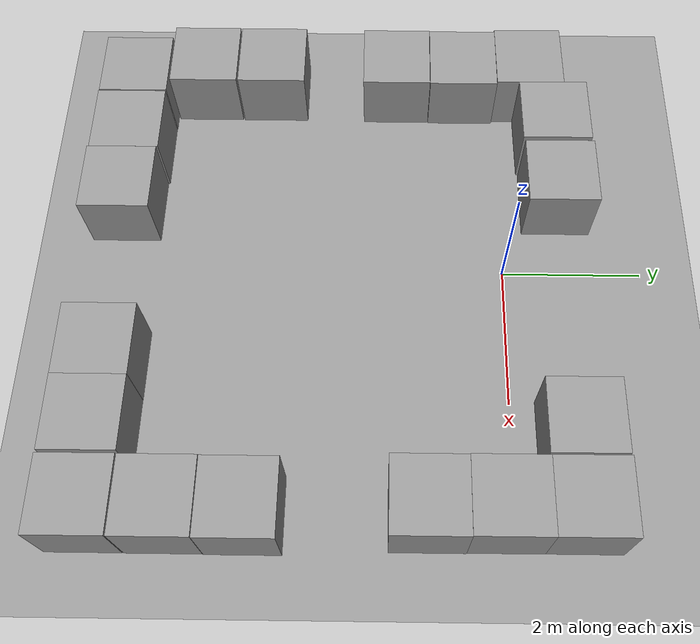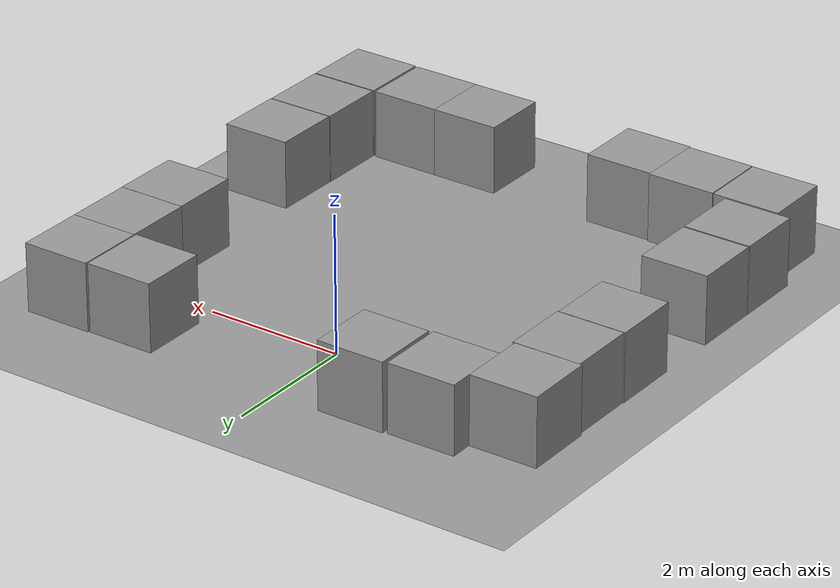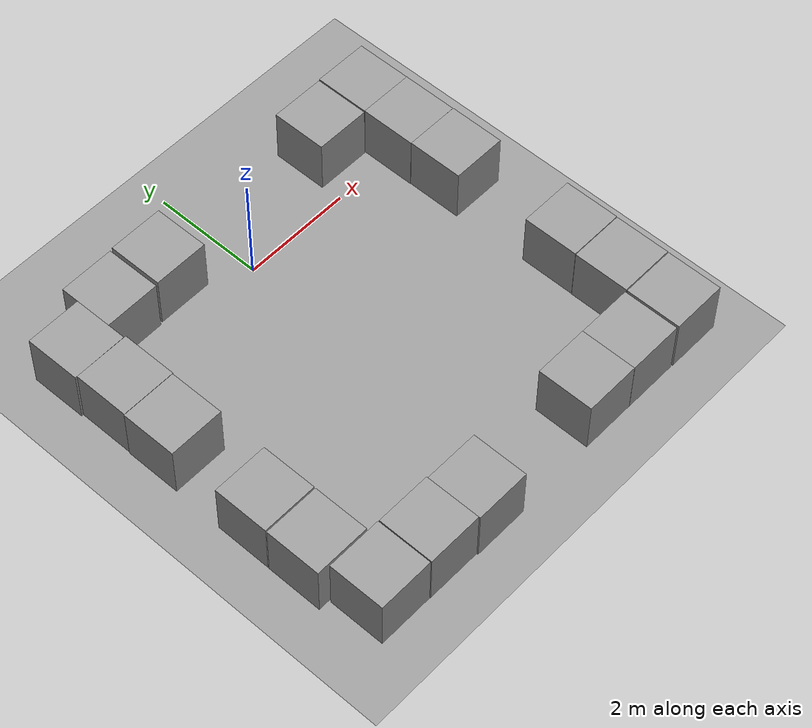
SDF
<sdf version="1.4">
 <world name="default">
  <light name="sun" type="directional">
   <pose>0 0 10 0 -0 0</pose>
   <diffuse>0.8 0.8 0.8 1</diffuse>
   <specular>0.2 0.2 0.2 1</specular>
   <attenuation>
    <range>1000</range>
    <constant>0.9</constant>
    <linear>0.01</linear>
    <quadratic>0.001</quadratic>
   </attenuation>
   <direction>0.5 0.1 -0.9</direction>
  </light>
  <scene><ambient>0.4 0.4 0.4 1</ambient><background>0.7 0.7 0.7 1</background><shadows>1</shadows></scene>
  <physics type="ode">
   <max_step_size>0.01</max_step_size>
   <real_time_factor>1</real_time_factor>
   <real_time_update_rate>100</real_time_update_rate>
   <gravity>0 0 -9.8</gravity>
  </physics>
  <model name="ground_plane_0">
   <static>1</static>
   <link name="link">
    <collision name="collision">
     <geometry><plane><normal>0 0 1</normal><size>100 100</size></plane></geometry>
     <surface><friction><ode><mu>100</mu><mu2>50</mu2></ode></friction></surface>
    </collision>
    <visual name="visual">
     <cast_shadows>0</cast_shadows>
     <geometry><plane><normal>0 0 1</normal><size>100 100</size></plane></geometry>
     <material>
      <script><uri>file://media/materials/scripts/gazebo.material</uri><name>Gazebo/Grey</name></script>
     </material>
    </visual>
    <velocity_decay><linear>0</linear><angular>0</angular></velocity_decay>
   </link>
   <pose>0.497681 0 0 0 -0 0</pose>
  </model>
  <spherical_coordinates>
   <surface_model>EARTH_WGS84</surface_model>
   <latitude_deg>0</latitude_deg>
   <longitude_deg>0</longitude_deg>
   <elevation>0</elevation>
   <heading_deg>0</heading_deg>
  </spherical_coordinates>
  <model name="unit_box_1">
   <pose>-1.9983 -5.50693 0.5 0 -0 -8.1e-05</pose>
   <link name="link">
    <inertial>
     <mass>1</mass>
     <inertia><ixx>1</ixx><ixy>0</ixy><ixz>0</ixz><iyy>1</iyy><iyz>0</iyz><izz>1</izz></inertia>
    </inertial>
    <collision name="collision"><geometry><box><size>1 1 1</size></box></geometry></collision>
    <visual name="visual">
     <geometry><box><size>1 1 1</size></box></geometry>
     <material>
      <script><uri>file://media/materials/scripts/gazebo.material</uri><name>Gazebo/Grey</name></script>
     </material>
    </visual>
    <velocity_decay><linear>0</linear><angular>0</angular></velocity_decay>
   </link>
   <static>0</static>
  </model>
  <model name="unit_box_2">
   <pose>-3.01301 -5.50106 0.5 0 -0 0.001673</pose>
   <link name="link">
    <inertial>
     <mass>1</mass>
     <inertia><ixx>1</ixx><ixy>0</ixy><ixz>0</ixz><iyy>1</iyy><iyz>0</iyz><izz>1</izz></inertia>
    </inertial>
    <collision name="collision"><geometry><box><size>1 1 1</size></box></geometry></collision>
    <visual name="visual">
     <geometry><box><size>1 1 1</size></box></geometry>
     <material>
      <script><uri>file://media/materials/scripts/gazebo.material</uri><name>Gazebo/Grey</name></script>
     </material>
    </visual>
    <velocity_decay><linear>0</linear><angular>0</angular></velocity_decay>
   </link>
   <static>0</static>
  </model>
  <model name="unit_box_3">
   <pose>-3.21516 -4.47183 0.5 0 -0 0</pose>
   <link name="link">
    <inertial>
     <mass>1</mass>
     <inertia><ixx>1</ixx><ixy>0</ixy><ixz>0</ixz><iyy>1</iyy><iyz>0</iyz><izz>1</izz></inertia>
    </inertial>
    <collision name="collision"><geometry><box><size>1 1 1</size></box></geometry></collision>
    <visual name="visual">
     <geometry><box><size>1 1 1</size></box></geometry>
     <material>
      <script><uri>file://media/materials/scripts/gazebo.material</uri><name>Gazebo/Grey</name></script>
     </material>
    </visual>
    <velocity_decay><linear>0</linear><angular>0</angular></velocity_decay>
   </link>
   <static>0</static>
  </model>
  <model name="unit_box_4">
   <pose>-3.21348 -3.44836 0.5 0 -0 7.1e-05</pose>
   <link name="link">
    <inertial>
     <mass>1</mass>
     <inertia><ixx>1</ixx><ixy>0</ixy><ixz>0</ixz><iyy>1</iyy><iyz>0</iyz><izz>1</izz></inertia>
    </inertial>
    <collision name="collision"><geometry><box><size>1 1 1</size></box></geometry></collision>
    <visual name="visual">
     <geometry><box><size>1 1 1</size></box></geometry>
     <material>
      <script><uri>file://media/materials/scripts/gazebo.material</uri><name>Gazebo/Grey</name></script>
     </material>
    </visual>
    <velocity_decay><linear>0</linear><angular>0</angular></velocity_decay>
   </link>
   <static>0</static>
  </model>
  <model name="unit_box_6">
   <pose>-3.19774 -1.55597 0.5 0 -0 0.003499</pose>
   <link name="link">
    <inertial>
     <mass>1</mass>
     <inertia><ixx>1</ixx><ixy>0</ixy><ixz>0</ixz><iyy>1</iyy><iyz>0</iyz><izz>1</izz></inertia>
    </inertial>
    <collision name="collision"><geometry><box><size>1 1 1</size></box></geometry></collision>
    <visual name="visual">
     <geometry><box><size>1 1 1</size></box></geometry>
     <material>
      <script><uri>file://media/materials/scripts/gazebo.material</uri><name>Gazebo/Grey</name></script>
     </material>
    </visual>
    <velocity_decay><linear>0</linear><angular>0</angular></velocity_decay>
   </link>
   <static>0</static>
  </model>
  <model name="unit_box_7">
   <pose>-3.18841 -0.550018 0.5 0 -0 0.003941</pose>
   <link name="link">
    <inertial>
     <mass>1</mass>
     <inertia><ixx>1</ixx><ixy>0</ixy><ixz>0</ixz><iyy>1</iyy><iyz>0</iyz><izz>1</izz></inertia>
    </inertial>
    <collision name="collision"><geometry><box><size>1 1 1</size></box></geometry></collision>
    <visual name="visual">
     <geometry><box><size>1 1 1</size></box></geometry>
     <material>
      <script><uri>file://media/materials/scripts/gazebo.material</uri><name>Gazebo/Grey</name></script>
     </material>
    </visual>
    <velocity_decay><linear>0</linear><angular>0</angular></velocity_decay>
   </link>
   <static>0</static>
  </model>
  <model name="unit_box_8">
   <pose>-3.22931 0.451945 0.5 0 -0 0.008458</pose>
   <link name="link">
    <inertial>
     <mass>1</mass>
     <inertia><ixx>1</ixx><ixy>0</ixy><ixz>0</ixz><iyy>1</iyy><iyz>0</iyz><izz>1</izz></inertia>
    </inertial>
    <collision name="collision"><geometry><box><size>1 1 1</size></box></geometry></collision>
    <visual name="visual">
     <geometry><box><size>1 1 1</size></box></geometry>
     <material>
      <script><uri>file://media/materials/scripts/gazebo.material</uri><name>Gazebo/Grey</name></script>
     </material>
    </visual>
    <velocity_decay><linear>0</linear><angular>0</angular></velocity_decay>
   </link>
   <static>0</static>
  </model>
  <model name="unit_box_9">
   <pose>-2.23206 0.789754 0.5 0 -0 0.008876</pose>
   <link name="link">
    <inertial>
     <mass>1</mass>
     <inertia><ixx>1</ixx><ixy>0</ixy><ixz>0</ixz><iyy>1</iyy><iyz>0</iyz><izz>1</izz></inertia>
    </inertial>
    <collision name="collision"><geometry><box><size>1 1 1</size></box></geometry></collision>
    <visual name="visual">
     <geometry><box><size>1 1 1</size></box></geometry>
     <material>
      <script><uri>file://media/materials/scripts/gazebo.material</uri><name>Gazebo/Grey</name></script>
     </material>
    </visual>
    <velocity_decay><linear>0</linear><angular>0</angular></velocity_decay>
   </link>
   <static>0</static>
  </model>
  <model name="unit_box_10">
   <pose>-0.998289 -5.53141 0.5 0 -0 -0.000105</pose>
   <link name="link">
    <inertial>
     <mass>1</mass>
     <inertia><ixx>1</ixx><ixy>0</ixy><ixz>0</ixz><iyy>1</iyy><iyz>0</iyz><izz>1</izz></inertia>
    </inertial>
    <collision name="collision"><geometry><box><size>1 1 1</size></box></geometry></collision>
    <visual name="visual">
     <geometry><box><size>1 1 1</size></box></geometry>
     <material>
      <script><uri>file://media/materials/scripts/gazebo.material</uri><name>Gazebo/Grey</name></script>
     </material>
    </visual>
    <velocity_decay><linear>0</linear><angular>0</angular></velocity_decay>
   </link>
   <static>0</static>
  </model>
  <model name="unit_box_11">
   <pose>1.49995 -5.49013 0.5 0 -0 0</pose>
   <link name="link">
    <inertial>
     <mass>1</mass>
     <inertia><ixx>1</ixx><ixy>0</ixy><ixz>0</ixz><iyy>1</iyy><iyz>0</iyz><izz>1</izz></inertia>
    </inertial>
    <collision name="collision"><geometry><box><size>1 1 1</size></box></geometry></collision>
    <visual name="visual">
     <geometry><box><size>1 1 1</size></box></geometry>
     <material>
      <script><uri>file://media/materials/scripts/gazebo.material</uri><name>Gazebo/Grey</name></script>
     </material>
    </visual>
    <velocity_decay><linear>0</linear><angular>0</angular></velocity_decay>
   </link>
   <static>0</static>
  </model>
  <model name="unit_box_12">
   <pose>2.49995 -5.49243 0.5 0 -0 0</pose>
   <link name="link">
    <inertial>
     <mass>1</mass>
     <inertia><ixx>1</ixx><ixy>0</ixy><ixz>0</ixz><iyy>1</iyy><iyz>0</iyz><izz>1</izz></inertia>
    </inertial>
    <collision name="collision"><geometry><box><size>1 1 1</size></box></geometry></collision>
    <visual name="visual">
     <geometry><box><size>1 1 1</size></box></geometry>
     <material>
      <script><uri>file://media/materials/scripts/gazebo.material</uri><name>Gazebo/Grey</name></script>
     </material>
    </visual>
    <velocity_decay><linear>0</linear><angular>0</angular></velocity_decay>
   </link>
   <static>0</static>
  </model>
  <model name="unit_box_13">
   <pose>3.53634 -5.50055 0.5 0 -0 0</pose>
   <link name="link">
    <inertial>
     <mass>1</mass>
     <inertia><ixx>1</ixx><ixy>0</ixy><ixz>0</ixz><iyy>1</iyy><iyz>0</iyz><izz>1</izz></inertia>
    </inertial>
    <collision name="collision"><geometry><box><size>1 1 1</size></box></geometry></collision>
    <visual name="visual">
     <geometry><box><size>1 1 1</size></box></geometry>
     <material>
      <script><uri>file://media/materials/scripts/gazebo.material</uri><name>Gazebo/Grey</name></script>
     </material>
    </visual>
    <velocity_decay><linear>0</linear><angular>0</angular></velocity_decay>
   </link>
   <static>0</static>
  </model>
  <model name="unit_box_14">
   <pose>3.53877 -4.4835 0.5 0 -0 0</pose>
   <link name="link">
    <inertial>
     <mass>1</mass>
     <inertia><ixx>1</ixx><ixy>0</ixy><ixz>0</ixz><iyy>1</iyy><iyz>0</iyz><izz>1</izz></inertia>
    </inertial>
    <collision name="collision"><geometry><box><size>1 1 1</size></box></geometry></collision>
    <visual name="visual">
     <geometry><box><size>1 1 1</size></box></geometry>
     <material>
      <script><uri>file://media/materials/scripts/gazebo.material</uri><name>Gazebo/Grey</name></script>
     </material>
    </visual>
    <velocity_decay><linear>0</linear><angular>0</angular></velocity_decay>
   </link>
   <static>0</static>
  </model>
  <model name="unit_box_15">
   <pose>3.54468 -3.4736 0.5 0 -0 0</pose>
   <link name="link">
    <inertial>
     <mass>1</mass>
     <inertia><ixx>1</ixx><ixy>0</ixy><ixz>0</ixz><iyy>1</iyy><iyz>0</iyz><izz>1</izz></inertia>
    </inertial>
    <collision name="collision"><geometry><box><size>1 1 1</size></box></geometry></collision>
    <visual name="visual">
     <geometry><box><size>1 1 1</size></box></geometry>
     <material>
      <script><uri>file://media/materials/scripts/gazebo.material</uri><name>Gazebo/Grey</name></script>
     </material>
    </visual>
    <velocity_decay><linear>0</linear><angular>0</angular></velocity_decay>
   </link>
   <static>0</static>
  </model>
  <model name="unit_box_16">
   <pose>3.49201 -1.13333 0.5 0 -0 -0.000981</pose>
   <link name="link">
    <inertial>
     <mass>1</mass>
     <inertia><ixx>1</ixx><ixy>0</ixy><ixz>0</ixz><iyy>1</iyy><iyz>0</iyz><izz>1</izz></inertia>
    </inertial>
    <collision name="collision"><geometry><box><size>1 1 1</size></box></geometry></collision>
    <visual name="visual">
     <geometry><box><size>1 1 1</size></box></geometry>
     <material>
      <script><uri>file://media/materials/scripts/gazebo.material</uri><name>Gazebo/Grey</name></script>
     </material>
    </visual>
    <velocity_decay><linear>0</linear><angular>0</angular></velocity_decay>
   </link>
   <static>0</static>
  </model>
  <model name="unit_box_17">
   <pose>3.48632 -0.132936 0.5 0 -0 -0.000195</pose>
   <link name="link">
    <inertial>
     <mass>1</mass>
     <inertia><ixx>1</ixx><ixy>0</ixy><ixz>0</ixz><iyy>1</iyy><iyz>0</iyz><izz>1</izz></inertia>
    </inertial>
    <collision name="collision"><geometry><box><size>1 1 1</size></box></geometry></collision>
    <visual name="visual">
     <geometry><box><size>1 1 1</size></box></geometry>
     <material>
      <script><uri>file://media/materials/scripts/gazebo.material</uri><name>Gazebo/Grey</name></script>
     </material>
    </visual>
    <velocity_decay><linear>0</linear><angular>0</angular></velocity_decay>
   </link>
   <static>0</static>
  </model>
  <model name="unit_box_18">
   <pose>3.4847 0.867083 0.5 0 -0 -0.000227</pose>
   <link name="link">
    <inertial>
     <mass>1</mass>
     <inertia><ixx>1</ixx><ixy>0</ixy><ixz>0</ixz><iyy>1</iyy><iyz>0</iyz><izz>1</izz></inertia>
    </inertial>
    <collision name="collision"><geometry><box><size>1 1 1</size></box></geometry></collision>
    <visual name="visual">
     <geometry><box><size>1 1 1</size></box></geometry>
     <material>
      <script><uri>file://media/materials/scripts/gazebo.material</uri><name>Gazebo/Grey</name></script>
     </material>
    </visual>
    <velocity_decay><linear>0</linear><angular>0</angular></velocity_decay>
   </link>
   <static>0</static>
  </model>
  <model name="unit_box_19">
   <pose>2.46369 0.851003 0.5 0 -0 -0.00026</pose>
   <link name="link">
    <inertial>
     <mass>1</mass>
     <inertia><ixx>1</ixx><ixy>0</ixy><ixz>0</ixz><iyy>1</iyy><iyz>0</iyz><izz>1</izz></inertia>
    </inertial>
    <collision name="collision"><geometry><box><size>1 1 1</size></box></geometry></collision>
    <visual name="visual">
     <geometry><box><size>1 1 1</size></box></geometry>
     <material>
      <script><uri>file://media/materials/scripts/gazebo.material</uri><name>Gazebo/Grey</name></script>
     </material>
    </visual>
    <velocity_decay><linear>0</linear><angular>0</angular></velocity_decay>
   </link>
   <static>0</static>
  </model>
  <model name="unit_box_21">
   <pose>-1.17603 0.818711 0.5 0 -0 0.004149</pose>
   <link name="link">
    <inertial>
     <mass>1</mass>
     <inertia><ixx>1</ixx><ixy>0</ixy><ixz>0</ixz><iyy>1</iyy><iyz>0</iyz><izz>1</izz></inertia>
    </inertial>
    <collision name="collision"><geometry><box><size>1 1 1</size></box></geometry></collision>
    <visual name="visual">
     <geometry><box><size>1 1 1</size></box></geometry>
     <material>
      <script><uri>file://media/materials/scripts/gazebo.material</uri><name>Gazebo/Grey</name></script>
     </material>
    </visual>
    <velocity_decay><linear>0</linear><angular>0</angular></velocity_decay>
   </link>
   <static>0</static>
  </model>
 </world>
</sdf>
